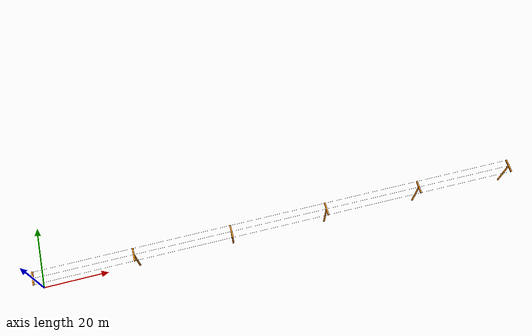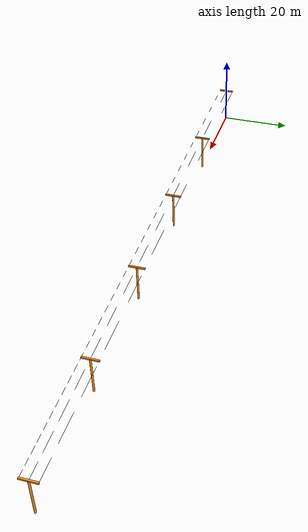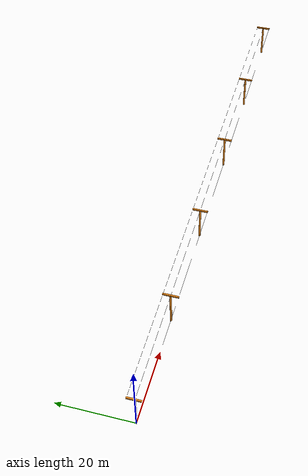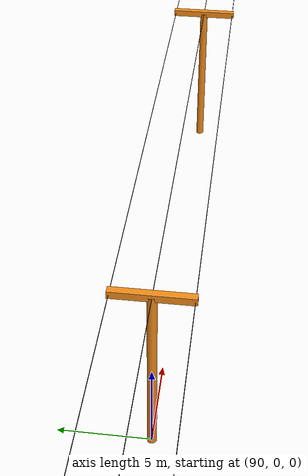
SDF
<sdf version="1.5">
 <world name="default">
  <include><uri>model://sun</uri></include>
  <include><uri>model://pole</uri><pose>0 0 5 0 0 0</pose></include>
  <include><name>pole2</name><uri>model://pole</uri><pose>30 0 5 0 0 0</pose></include>
  <include><name>pole3</name><uri>model://pole</uri><pose>60 0 5 0 0 0</pose></include>
  <include><name>pole4</name><uri>model://pole</uri><pose>90 0 5 0 0 0</pose></include>
  <include><name>pole5</name><uri>model://pole</uri><pose>120 0 5 0 0 0</pose></include>
  <include><uri>model://pole_wireless</uri><pose>150 0 5 0 0 0</pose></include>
  <physics name="default_physics" default="0" type="ode">
   <gravity>0 0 -9.8066</gravity>
   <ode>
    <solver>
     <type>quick</type>
     <iters>10</iters>
     <sor>1.3</sor>
     <use_dynamic_moi_rescaling>0</use_dynamic_moi_rescaling>
    </solver>
    <constraints>
     <cfm>0</cfm>
     <erp>0.2</erp>
     <contact_max_correcting_vel>100</contact_max_correcting_vel>
     <contact_surface_layer>0.001</contact_surface_layer>
    </constraints>
   </ode>
   <max_step_size>0.004</max_step_size>
   <real_time_factor>1</real_time_factor>
   <real_time_update_rate>250</real_time_update_rate>
   <magnetic_field>6.0e-6 2.3e-5 -4.2e-5</magnetic_field>
  </physics>
 </world>
</sdf>

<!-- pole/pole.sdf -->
<sdf version='1.6'>
  <model name='pole'>
    <link name='footprint'>
      <pose frame=''>0 0 0 0 -0 0</pose>
      <inertial>
        <pose frame=''>0.044423 0 0.064166 0 -0 0</pose>
        <mass>101.3</mass>
        <inertia>
          <ixx>871.771</ixx>
          <ixy>-4.44089e-16</ixy>
          <ixz>-22.2113</ixz>
          <iyy>938.276</iyy>
          <iyz>0</iyz>
          <izz>75.2211</izz>
        </inertia>
      </inertial>
      <collision name='footprint_fixed_joint_lump__base_link_collision'>
        <pose frame=''>0 0 0 0 -0 0</pose>
        <geometry>
          <cylinder>
            <length>10</length>
            <radius>0.25</radius>
          </cylinder>
        </geometry>
        <surface>
          <contact>
            <ode/>
          </contact>
          <friction>
            <ode/>
          </friction>
        </surface>
      </collision>
      <collision name='footprint_fixed_joint_lump__top_collision_1'>
        <pose frame=''>0 0 5 0 -0 1.5708</pose>
        <geometry>
          <box>
            <size>4.2 0.4 0.4</size>
          </box>
        </geometry>
        <surface>
          <contact>
            <ode/>
          </contact>
          <friction>
            <ode/>
          </friction>
        </surface>
      </collision>
      <collision name='footprint_fixed_joint_lump__center_cable_link_collision_2'>
        <pose frame=''>15 0 5 3.14159 1.57079 3.14159</pose>
        <geometry>
          <cylinder>
            <length>30</length>
            <radius>0.015</radius>
          </cylinder>
        </geometry>
        <surface>
          <contact>
            <ode/>
          </contact>
          <friction>
            <ode/>
          </friction>
        </surface>
      </collision>
      <collision name='footprint_fixed_joint_lump__left_cable_link_collision_3'>
        <pose frame=''>15 1.995 5 3.14159 1.57079 3.14159</pose>
        <geometry>
          <cylinder>
            <length>30</length>
            <radius>0.015</radius>
          </cylinder>
        </geometry>
        <surface>
          <contact>
            <ode/>
          </contact>
          <friction>
            <ode/>
          </friction>
        </surface>
      </collision>
      <collision name='footprint_fixed_joint_lump__right_cable_link_collision_4'>
        <pose frame=''>15 -1.995 5 3.14159 1.57079 3.14159</pose>
        <geometry>
          <cylinder>
            <length>30</length>
            <radius>0.015</radius>
          </cylinder>
        </geometry>
        <surface>
          <contact>
            <ode/>
          </contact>
          <friction>
            <ode/>
          </friction>
        </surface>
      </collision>
      <visual name='footprint_fixed_joint_lump__base_link_visual'>
        <pose frame=''>0 0 0 0 -0 0</pose>
        <geometry>
          <cylinder>
            <length>10</length>
            <radius>0.25</radius>
          </cylinder>
        </geometry>
        <material>
          <script>
            <name>Gazebo/Orange</name>
            <uri>file://media/materials/scripts/gazebo.material</uri>
          </script>
        </material>
      </visual>
      <visual name='footprint_fixed_joint_lump__top_visual_1'>
        <pose frame=''>0 0 5 0 -0 1.5708</pose>
        <geometry>
          <box>
            <size>4.2 0.4 0.4</size>
          </box>
        </geometry>
        <material>
          <script>
            <name>Gazebo/Orange</name>
            <uri>file://media/materials/scripts/gazebo.material</uri>
          </script>
        </material>
      </visual>
      <visual name='footprint_fixed_joint_lump__center_cable_link_visual_2'>
        <pose frame=''>15 0 5 3.14159 1.57079 3.14159</pose>
        <geometry>
          <cylinder>
            <length>30</length>
            <radius>0.015</radius>
          </cylinder>
        </geometry>
        <material>
          <script>
            <name>Gazebo/Black</name>
            <uri>file://media/materials/scripts/gazebo.material</uri>
          </script>
        </material>
      </visual>
      <visual name='footprint_fixed_joint_lump__left_cable_link_visual_3'>
        <pose frame=''>15 1.995 5 3.14159 1.57079 3.14159</pose>
        <geometry>
          <cylinder>
            <length>30</length>
            <radius>0.015</radius>
          </cylinder>
        </geometry>
        <material>
          <script>
            <name>Gazebo/Black</name>
            <uri>file://media/materials/scripts/gazebo.material</uri>
          </script>
        </material>
      </visual>
      <visual name='footprint_fixed_joint_lump__right_cable_link_visual_4'>
        <pose frame=''>15 -1.995 5 3.14159 1.57079 3.14159</pose>
        <geometry>
          <cylinder>
            <length>30</length>
            <radius>0.015</radius>
          </cylinder>
        </geometry>
        <material>
          <script>
            <name>Gazebo/Black</name>
            <uri>file://media/materials/scripts/gazebo.material</uri>
          </script>
        </material>
      </visual>
      <velocity_decay/>
      <velocity_decay/>
      <velocity_decay/>
      <velocity_decay/>
      <gravity>1</gravity>
      <velocity_decay/>
      <self_collide>0</self_collide>
    </link>
    <static>1</static>
  </model>
</sdf>

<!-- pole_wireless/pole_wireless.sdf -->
<sdf version='1.6'>
  <model name='pole_without_cables'>
    <link name='footprint'>
      <pose frame=''>0 0 0 0 -0 0</pose>
      <inertial>
        <pose frame=''>0 0 0.049505 0 -0 0</pose>
        <mass>101</mass>
        <inertia>
          <ixx>860.645</ixx>
          <ixy>0</ixy>
          <ixz>0</ixz>
          <iyy>860.645</iyy>
          <iyz>0</iyz>
          <izz>4.125</izz>
        </inertia>
      </inertial>
      <collision name='footprint_fixed_joint_lump__base_link_collision'>
        <pose frame=''>0 0 0 0 -0 0</pose>
        <geometry>
          <cylinder>
            <length>10</length>
            <radius>0.25</radius>
          </cylinder>
        </geometry>
        <surface>
          <contact>
            <ode/>
          </contact>
          <friction>
            <ode/>
          </friction>
        </surface>
      </collision>
      <collision name='footprint_fixed_joint_lump__top_collision_1'>
        <pose frame=''>0 0 5 0 -0 1.5708</pose>
        <geometry>
          <box>
            <size>4.2 0.4 0.4</size>
          </box>
        </geometry>
        <surface>
          <contact>
            <ode/>
          </contact>
          <friction>
            <ode/>
          </friction>
        </surface>
      </collision>
      <visual name='footprint_fixed_joint_lump__base_link_visual'>
        <pose frame=''>0 0 0 0 -0 0</pose>
        <geometry>
          <cylinder>
            <length>10</length>
            <radius>0.25</radius>
          </cylinder>
        </geometry>
        <material>
          <script>
            <name>Gazebo/Orange</name>
            <uri>file://media/materials/scripts/gazebo.material</uri>
          </script>
        </material>
      </visual>
      <visual name='footprint_fixed_joint_lump__top_visual_1'>
        <pose frame=''>0 0 5 0 -0 1.5708</pose>
        <geometry>
          <box>
            <size>4.2 0.4 0.4</size>
          </box>
        </geometry>
        <material>
          <script>
            <name>Gazebo/Orange</name>
            <uri>file://media/materials/scripts/gazebo.material</uri>
          </script>
        </material>
      </visual>
      <velocity_decay/>
      <gravity>1</gravity>
      <velocity_decay/>
      <self_collide>0</self_collide>
    </link>
    <static>1</static>
  </model>
</sdf>
